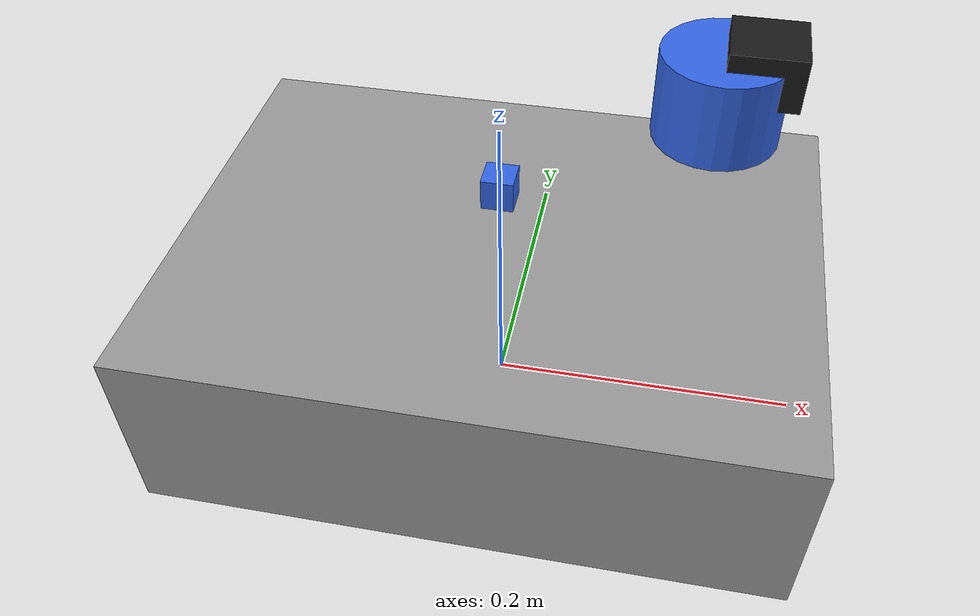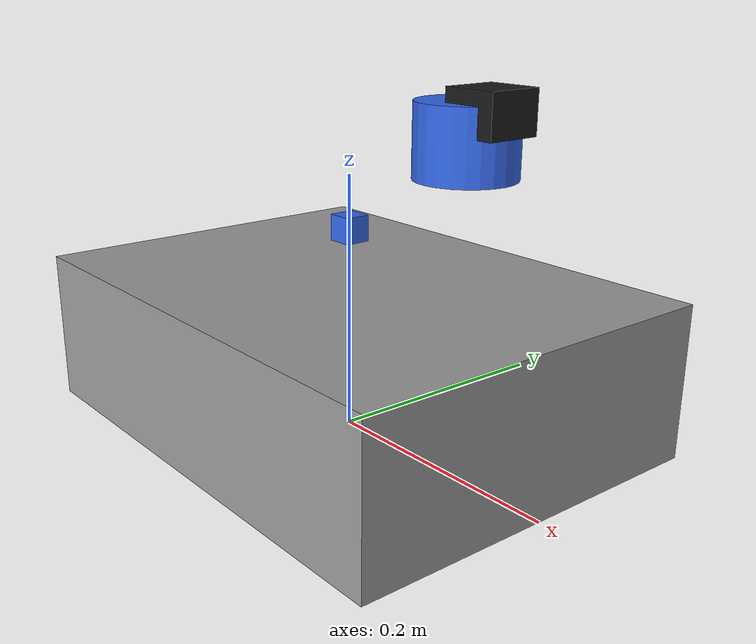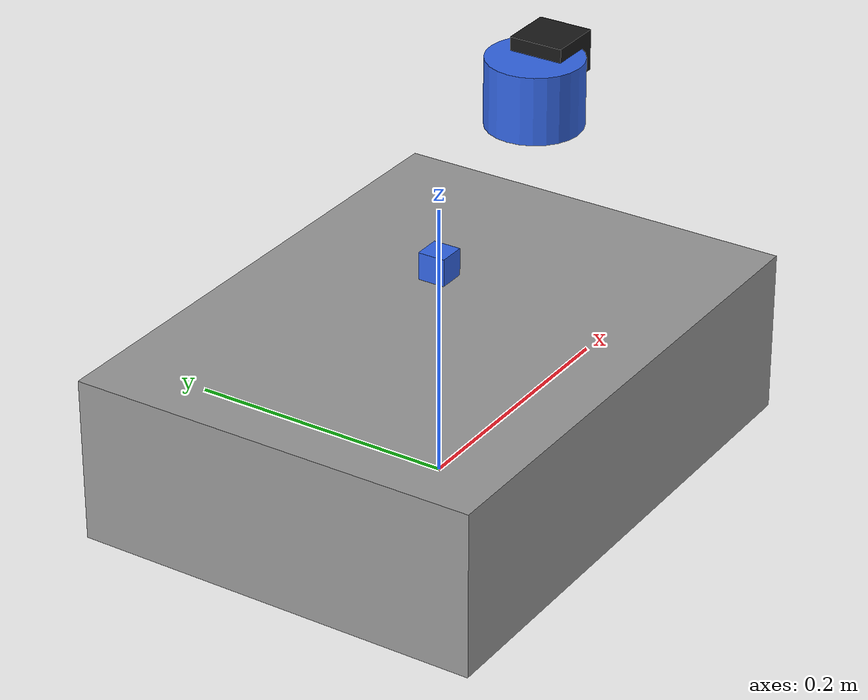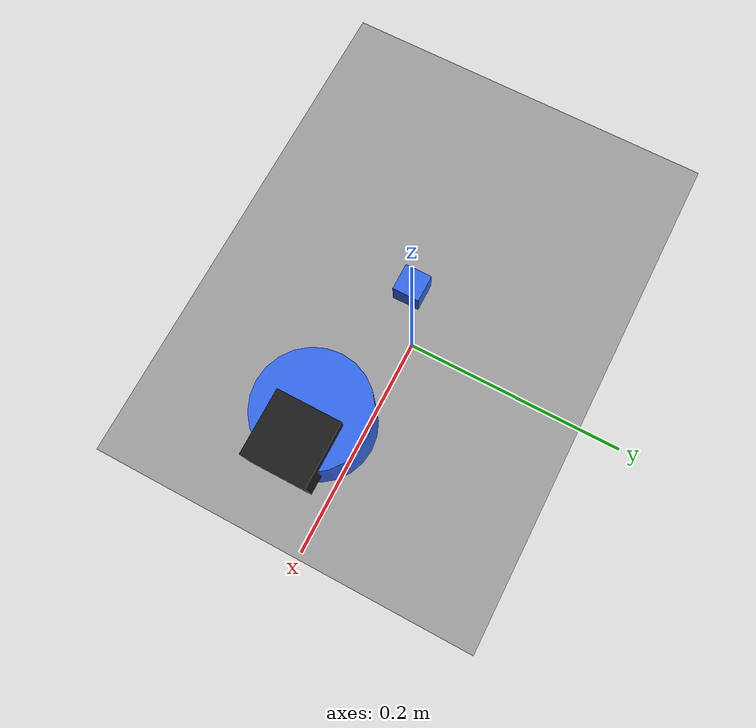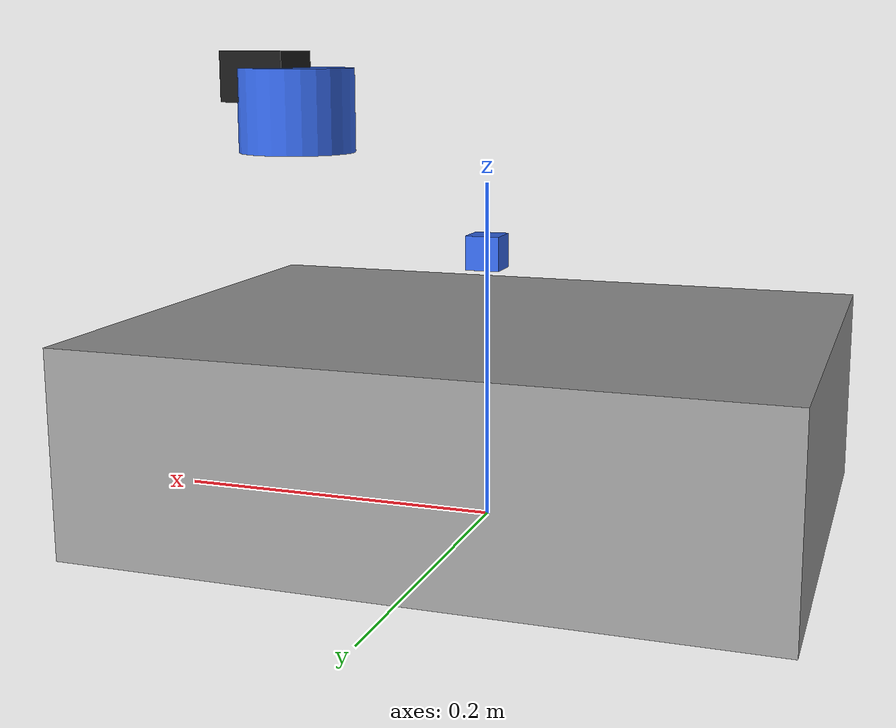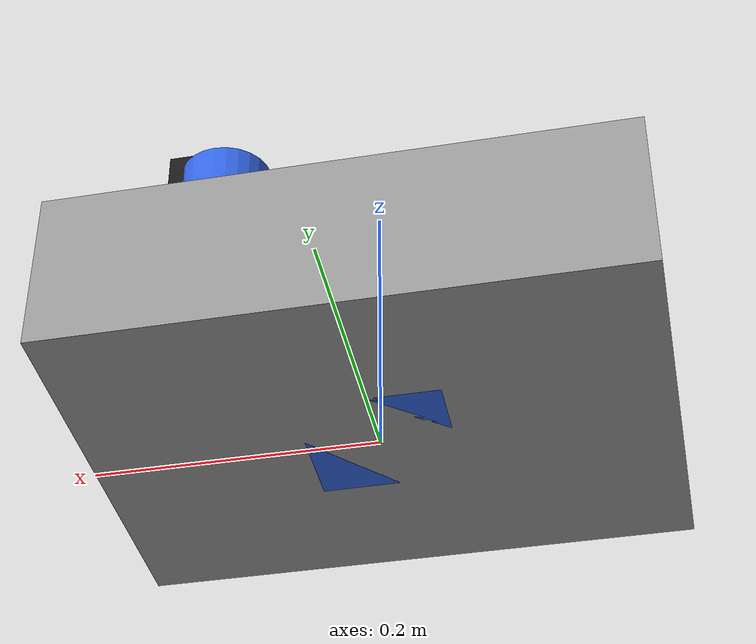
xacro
<?xml version="1.0"?>
<robot xmlns:xacro="http://ros.org/wiki/xacro" name="limo">

  <!-- ====== 기본 파라미터(현장값에 맞게 조정) ====== -->
  <xacro:property name="use_mesh"         value="false"/>         <!-- true면 meshes/사용 -->
  <xacro:property name="mesh_dir"         value="$(find limo_description)/meshes"/>

  <!-- 바디 치수/질량 -->
  <xacro:property name="base_len"         value="0.40"/>
  <xacro:property name="base_wid"         value="0.30"/>
  <xacro:property name="base_hei"         value="0.12"/>
  <xacro:property name="base_mass"        value="6.0"/>           <!-- kg (예시) -->

  <!-- 휠/구동 (스키드-디퍼런셜 가정) -->
  <xacro:property name="wheel_radius"     value="0.050"/>         <!-- 50 mm -->
  <xacro:property name="wheel_width"      value="0.020"/>
  <xacro:property name="wheel_sep"        value="0.26"/>          <!-- 좌/우 간격 -->
  <xacro:property name="wheel_base"       value="0.22"/>          <!-- 전/후 간격 -->
  <xacro:property name="wheel_mass"       value="0.2"/>

  <!-- 센서 위치(기본값) -->
  <xacro:property name="lidar_x"          value="0.12"/>
  <xacro:property name="lidar_z"          value="0.18"/>
  <xacro:property name="camera_x"         value="0.14"/>
  <xacro:property name="camera_z"         value="0.20"/>
  <xacro:property name="imu_x"            value="0.00"/>
  <xacro:property name="imu_z"            value="0.10"/>

  <!-- 프레임 명칭(상위 bringup과 일치) -->
  <xacro:property name="map_frame"        value="map"/>
  <xacro:property name="odom_frame"       value="odom"/>
  <xacro:property name="base_link"        value="base_link"/>
  <xacro:property name="base_footprint"   value="base_footprint"/>
  <xacro:property name="laser_frame"      value="base_laser"/>
  <xacro:property name="camera_frame"     value="camera_link"/>
  <xacro:property name="imu_frame"        value="imu_link"/>

  <!-- ====== 유틸 매크로 ====== -->
  <xacro:macro name="inertial_box" params="mass x y z">
    <inertial>
      <mass value="${mass}"/>
      <origin xyz="0 0 0" rpy="0 0 0"/>
      <!-- 직육면체 관성: I = m/12 * diag(y^2+z^2, x^2+z^2, x^2+y^2) -->
      <inertia ixx="${mass*( (y*y + z*z)/12.0 )}"
               ixy="0.0" ixz="0.0"
               iyy="${mass*( (x*x + z*z)/12.0 )}"
               iyz="0.0"
               izz="${mass*( (x*x + y*y)/12.0 )}"/>
    </inertial>
  </xacro:macro>

  <xacro:macro name="mat" params="name r g b a">
    <material name="${name}">
      <color rgba="${r} ${g} ${b} ${a}"/>
    </material>
  </xacro:macro>
  <xacro:mat name="grey"  r="0.6" g="0.6" b="0.6" a="1.0"/>
  <xacro:mat name="black" r="0.1" g="0.1" b="0.1" a="1.0"/>
  <xacro:mat name="blue"  r="0.2" g="0.4" b="0.9" a="1.0"/>

  <!-- ====== 링크/조인트 정의 ====== -->

  <!-- 평면 기준 프레임 -->
  <link name="${base_footprint}">
    <inertial>
      <mass value="1e-6"/>
      <origin xyz="0 0 0" rpy="0 0 0"/>
      <inertia ixx="1e-6" ixy="0" ixz="0" iyy="1e-6" iyz="0" izz="1e-6"/>
    </inertial>
    <visual>
      <origin xyz="0 0 0.001" rpy="0 0 0"/>
      <geometry><box size="0.10 0.10 0.002"/></geometry>
      <material name="blue"/>
    </visual>
    <collision>
      <origin xyz="0 0 0.0" rpy="0 0 0"/>
      <geometry><box size="0.10 0.10 0.001"/></geometry>
    </collision>
  </link>

  <joint name="footprint_to_base" type="fixed">
    <parent link="${base_footprint}"/>
    <child  link="${base_link}"/>
    <origin xyz="0 0 ${base_hei/2.0}" rpy="0 0 0"/>
  </joint>

  <!-- 본체 -->
  <link name="${base_link}">
    <xacro:inertial_box mass="${base_mass}" x="${base_len}" y="${base_wid}" z="${base_hei}"/>
    <visual>
      <origin xyz="0 0 0" rpy="0 0 0"/>
      <geometry>
        <xacro:if value="${use_mesh}">
          <mesh filename="${mesh_dir}/base.dae" scale="1 1 1"/>
        </xacro:if>
        <xacro:unless value="${use_mesh}">
          <box size="${base_len} ${base_wid} ${base_hei}"/>
        </xacro:unless>
      </geometry>
      <material name="grey"/>
    </visual>
    <collision>
      <origin xyz="0 0 0" rpy="0 0 0"/>
      <geometry><box size="${base_len} ${base_wid} ${base_hei}"/></geometry>
    </collision>
  </link>

  <!-- 휠(4개) : 시각화용, 고정조인트(실제 구동은 하드웨어) -->
  <xacro:macro name="wheel" params="name x y">
    <link name="${name}">
      <inertial>
        <mass value="${wheel_mass}"/>
        <origin xyz="0 0 0" rpy="0 0 0"/>
        <inertia ixx="1e-3" ixy="0" ixz="0" iyy="1e-3" iyz="0" izz="1e-3"/>
      </inertial>
      <visual>
        <origin xyz="0 0 0" rpy="1.5708 0 0"/>
        <geometry>
          <xacro:if value="${use_mesh}">
            <mesh filename="${mesh_dir}/wheel.dae" scale="1 1 1"/>
          </xacro:if>
          <xacro:unless value="${use_mesh}">
            <cylinder radius="${wheel_radius}" length="${wheel_width}"/>
          </xacro:unless>
        </geometry>
        <material name="black"/>
      </visual>
      <collision>
        <origin xyz="0 0 0" rpy="1.5708 0 0"/>
        <geometry><cylinder radius="${wheel_radius}" length="${wheel_width}"/></geometry>
      </collision>
    </link>
    <joint name="${name}_joint" type="fixed">
      <parent link="${base_link}"/>
      <child  link="${name}"/>
      <origin xyz="${x} ${y} ${-(base_hei/2.0 - wheel_radius)}" rpy="0 0 0"/>
    </joint>
  </xacro:macro>

  <!-- 좌우/전후 위치 -->
  <xacro:wheel name="wheel_fl" x="${ wheel_base/2.0}" y="${  wheel_sep/2.0}"/>
  <xacro:wheel name="wheel_fr" x="${ wheel_base/2.0}" y="${ -wheel_sep/2.0}"/>
  <xacro:wheel name="wheel_rl" x="${-wheel_base/2.0}" y="${  wheel_sep/2.0}"/>
  <xacro:wheel name="wheel_rr" x="${-wheel_base/2.0}" y="${ -wheel_sep/2.0}"/>

  <!-- LiDAR -->
  <link name="${laser_frame}">
    <inertial><mass value="0.15"/><origin xyz="0 0 0" rpy="0 0 0"/>
      <inertia ixx="1e-4" ixy="0" ixz="0" iyy="1e-4" iyz="0" izz="1e-4"/></inertial>
    <visual>
      <origin xyz="0 0 0" rpy="0 0 0"/>
      <geometry>
        <xacro:if value="${use_mesh}">
          <mesh filename="${mesh_dir}/lidar.dae" scale="1 1 1"/>
        </xacro:if>
        <xacro:unless value="${use_mesh}">
          <cylinder radius="0.035" length="0.05"/>
        </xacro:unless>
      </geometry>
      <material name="blue"/>
    </visual>
    <collision>
      <origin xyz="0 0 0" rpy="0 0 0"/>
      <geometry><cylinder radius="0.035" length="0.05"/></geometry>
    </collision>
  </link>
  <joint name="laser_mount" type="fixed">
    <parent link="${base_link}"/>
    <child  link="${laser_frame}"/>
    <origin xyz="${lidar_x} 0 ${lidar_z}" rpy="0 0 0"/>
  </joint>

  <!-- Camera -->
  <link name="${camera_frame}">
    <inertial><mass value="0.10"/><origin xyz="0 0 0" rpy="0 0 0"/>
      <inertia ixx="1e-4" ixy="0" ixz="0" iyy="1e-4" iyz="0" izz="1e-4"/></inertial>
    <visual>
      <origin xyz="0 0 0" rpy="0 0 0"/>
      <geometry>
        <xacro:if value="${use_mesh}">
          <mesh filename="${mesh_dir}/camera.dae" scale="1 1 1"/>
        </xacro:if>
        <xacro:unless value="${use_mesh}">
          <box size="0.04 0.04 0.03"/>
        </xacro:unless>
      </geometry>
      <material name="black"/>
    </visual>
    <collision>
      <origin xyz="0 0 0" rpy="0 0 0"/>
      <geometry><box size="0.04 0.04 0.03"/></geometry>
    </collision>
  </link>
  <joint name="camera_mount" type="fixed">
    <parent link="${base_link}"/>
    <child  link="${camera_frame}"/>
    <!-- 카메라는 전방을 보도록 약간 pitch 내려도 됨: rpy="0 0.17 0" 등 -->
    <origin xyz="${camera_x} 0 ${camera_z}" rpy="0 0 0"/>
  </joint>

  <!-- IMU -->
  <link name="${imu_frame}">
    <inertial><mass value="0.05"/><origin xyz="0 0 0" rpy="0 0 0"/>
      <inertia ixx="5e-5" ixy="0" ixz="0" iyy="5e-5" iyz="0" izz="5e-5"/></inertial>
    <visual>
      <origin xyz="0 0 0" rpy="0 0 0"/>
      <geometry><box size="0.02 0.02 0.02"/></geometry>
      <material name="blue"/>
    </visual>
    <collision>
      <origin xyz="0 0 0" rpy="0 0 0"/>
      <geometry><box size="0.02 0.02 0.02"/></geometry>
    </collision>
  </link>
  <joint name="imu_mount" type="fixed">
    <parent link="${base_link}"/>
    <child  link="${imu_frame}"/>
    <origin xyz="${imu_x} 0 ${imu_z}" rpy="0 0 0"/>
  </joint>

  <!-- (옵션) Gazebo/전달기(transmission)는 생략: 실제 구동은 하드웨어가 담당 -->
</robot>
